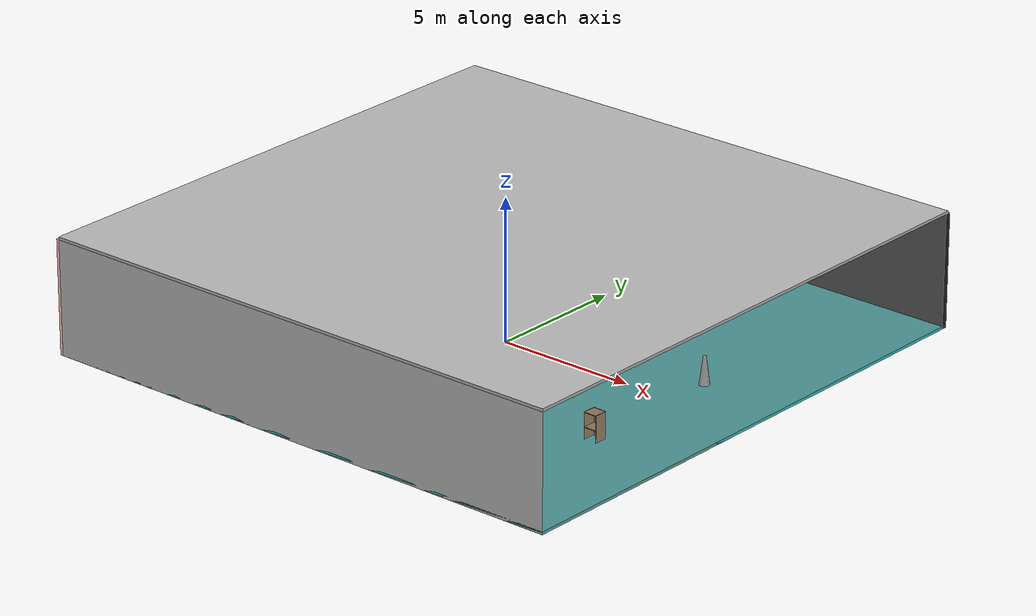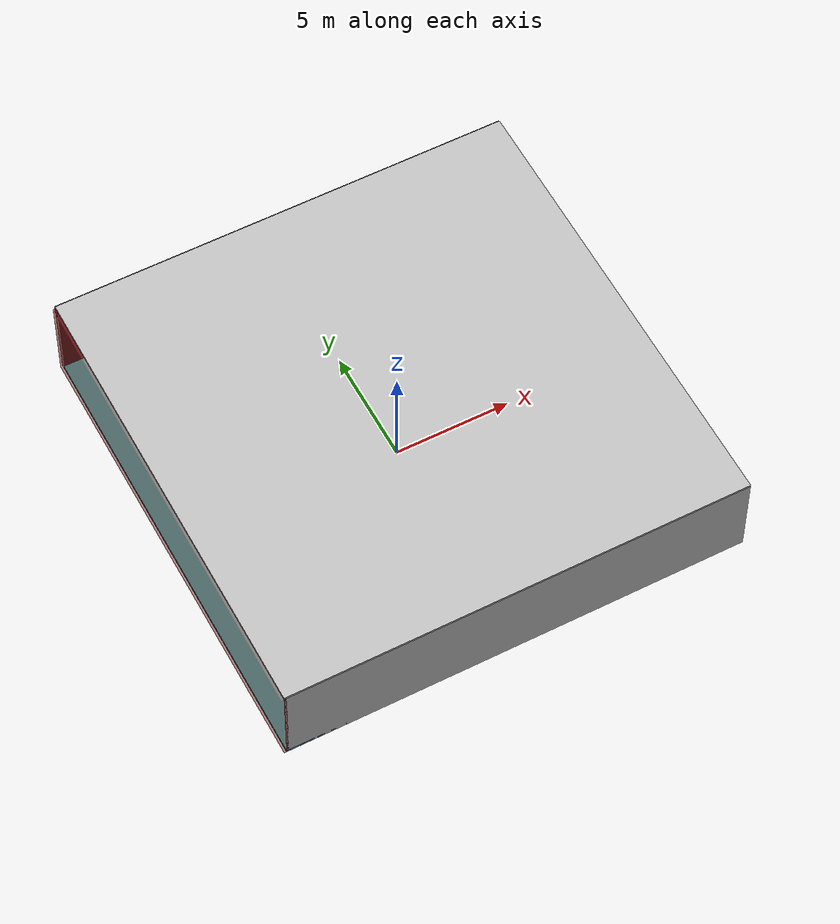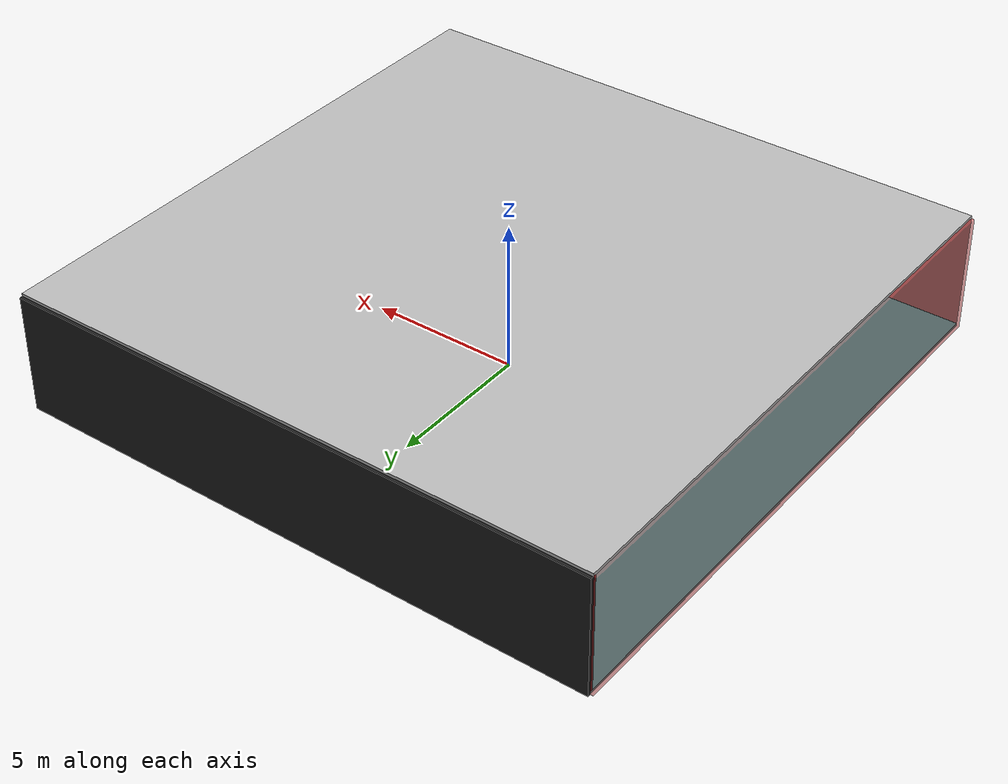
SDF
<sdf version="1.4">
 <world name="default">
  <physics type="ode">
   <max_step_size>0.001</max_step_size>
   <real_time_factor>1</real_time_factor>
   <real_time_update_rate>1000</real_time_update_rate>
   <gravity>0 0 -9.8</gravity>
  </physics>
  <scene><ambient>0.4 0.4 0.4 1</ambient><background>0.7 0.7 0.7 1</background><shadows>1</shadows></scene>
  <model name="Surrounding">
   <static>1</static>
   <link name="Ceiling">
    <collision name="Ceiling_Collision"><geometry><box><size>20 20 0.1</size></box></geometry></collision>
    <visual name="Ceiling_Visual">
     <geometry><box><size>20 20 0.1</size></box></geometry>
     <material>
      <script><uri>file://media/materials/scripts/gazebo.material</uri><name>Gazebo/LightOn</name></script>
     </material>
    </visual>
    <pose>0 0 4.05 0 0 0</pose>
   </link>
   <link name="Wall_South">
    <collision name="Wall_South_Collision">
     <geometry><box><size>20 0 4</size></box></geometry>
     <pose>0 0 2 0 -0 0</pose>
    </collision>
    <visual name="Wall_South_Visual">
     <pose>0 0 2 0 -0 0</pose>
     <geometry><box><size>20 0 4</size></box></geometry>
     <material>
      <script><uri>file://media/materials/scripts/gazebo.material</uri><name>Gazebo/Pioneer2Body</name></script>
     </material>
    </visual>
    <velocity_decay><linear>0</linear><angular>0</angular></velocity_decay>
    <pose>0 -10 0 0 -0 0</pose>
   </link>
   <link name="Wall_East">
    <collision name="Wall_21_Collision">
     <geometry><box><size>20 0 4</size></box></geometry>
     <pose>0 0 2 0 -0 0</pose>
    </collision>
    <visual name="Wall_21_Visual">
     <pose>0 0 2 0 -0 0</pose>
     <geometry><box><size>20 0 4</size></box></geometry>
     <material>
      <script><uri>file://media/materials/scripts/gazebo.material</uri><name>Gazebo/GreyTransparent</name></script>
     </material>
    </visual>
    <velocity_decay><linear>0</linear><angular>0</angular></velocity_decay>
    <pose>10 0 0 0 -0 1.5708</pose>
   </link>
   <link name="Wall_North">
    <collision name="Wall_22_Collision">
     <geometry><box><size>20 0.2 4</size></box></geometry>
     <pose>0 0 2 0 -0 0</pose>
    </collision>
    <visual name="Wall_22_Visual">
     <pose>0 0 2 0 -0 0</pose>
     <geometry><box><size>20 0.2 4</size></box></geometry>
     <material>
      <script><uri>file://media/materials/scripts/gazebo.material</uri><name>Gazebo/FlatBlack</name></script>
     </material>
    </visual>
    <velocity_decay><linear>0</linear><angular>0</angular></velocity_decay>
    <pose>0 10 0 0 -0 0</pose>
   </link>
   <link name="Wall_West">
    <collision name="Wall_23_Collision">
     <geometry><box><size>20 0.2 4</size></box></geometry>
     <pose>0 0 2 0 -0 0</pose>
    </collision>
    <visual name="Wall_23_Visual">
     <pose>0 0 2 0 -0 0</pose>
     <geometry><box><size>20 0.2 4</size></box></geometry>
     <material>
      <script><uri>file://media/materials/scripts/gazebo.material</uri><name>Gazebo/RedTransparent</name></script>
     </material>
    </visual>
    <velocity_decay><linear>0</linear><angular>0</angular></velocity_decay>
    <pose>-10 0 0 0 0 -1.5708</pose>
   </link>
   <link name="Ground_link">
    <collision name="collision">
     <pose>0 0 .05 0 -0 0</pose>
     <geometry><box><size>20 20 0.1</size></box></geometry>
    </collision>
    <visual name="visual">
     <pose>0 0 .05 0 -0 0</pose>
     <geometry><box><size>20 20 0.1</size></box></geometry>
     <material>
      <script>
       <uri>file://media/materials/scripts/gazebo.material</uri>
       <name>Gazebo/TurquoiseGlowOutline</name>
      </script>
     </material>
    </visual>
   </link>
   <static>1</static>
  </model>
  <spherical_coordinates>
   <surface_model>EARTH_WGS84</surface_model>
   <latitude_deg>0</latitude_deg>
   <longitude_deg>0</longitude_deg>
   <elevation>0</elevation>
   <heading_deg>0</heading_deg>
  </spherical_coordinates>
  <light name="lightball_0" type="diffuse">
   <diffuse>0.8 0.8 0.8 1</diffuse>
   <specular>0.2 0.2 0.2 1</specular>
   <attenuation>
    <range>100</range>
    <constant>0.7</constant>
    <linear>0.01</linear>
    <quadratic>0.001</quadratic>
   </attenuation>
   <direction>-0.5 0.1 -0.9</direction>
   <pose>7.03580580655 -5.8082998961 1.52267526075 0 0 0</pose>
  </light>
  <light name="lightball_1" type="diffuse">
   <diffuse>0.8 0.8 0.8 1</diffuse>
   <specular>0.2 0.2 0.2 1</specular>
   <attenuation>
    <range>100</range>
    <constant>0.7</constant>
    <linear>0.01</linear>
    <quadratic>0.001</quadratic>
   </attenuation>
   <direction>-0.5 0.1 -0.9</direction>
   <pose>7.10763752932 -8.29259481484 1.12060167996 0 0 0</pose>
  </light>
  <light name="lightball_2" type="diffuse">
   <diffuse>0.8 0.8 0.8 1</diffuse>
   <specular>0.2 0.2 0.2 1</specular>
   <attenuation>
    <range>100</range>
    <constant>0.7</constant>
    <linear>0.01</linear>
    <quadratic>0.001</quadratic>
   </attenuation>
   <direction>-0.5 0.1 -0.9</direction>
   <pose>5.33729773496 7.99495704223 2.65278561585 0 0 0</pose>
  </light>
  <light name="lightball_3" type="diffuse">
   <diffuse>0.8 0.8 0.8 1</diffuse>
   <specular>0.2 0.2 0.2 1</specular>
   <attenuation>
    <range>100</range>
    <constant>0.7</constant>
    <linear>0.01</linear>
    <quadratic>0.001</quadratic>
   </attenuation>
   <direction>-0.5 0.1 -0.9</direction>
   <pose>-1.2046223188 -7.49782266887 2.66851370033 0 0 0</pose>
  </light>
  <light name="lightball_4" type="diffuse">
   <diffuse>0.8 0.8 0.8 1</diffuse>
   <specular>0.2 0.2 0.2 1</specular>
   <attenuation>
    <range>100</range>
    <constant>0.7</constant>
    <linear>0.01</linear>
    <quadratic>0.001</quadratic>
   </attenuation>
   <direction>-0.5 0.1 -0.9</direction>
   <pose>6.39294483042 5.3245548819 1.66264822242 0 0 0</pose>
  </light>
  <light name="lightball_5" type="diffuse">
   <diffuse>0.8 0.8 0.8 1</diffuse>
   <specular>0.2 0.2 0.2 1</specular>
   <attenuation>
    <range>100</range>
    <constant>0.7</constant>
    <linear>0.01</linear>
    <quadratic>0.001</quadratic>
   </attenuation>
   <direction>-0.5 0.1 -0.9</direction>
   <pose>-2.38025771537 -7.21319275905 0.688862753903 0 0 0</pose>
  </light>
  <light name="lightball_6" type="diffuse">
   <diffuse>0.8 0.8 0.8 1</diffuse>
   <specular>0.2 0.2 0.2 1</specular>
   <attenuation>
    <range>100</range>
    <constant>0.7</constant>
    <linear>0.01</linear>
    <quadratic>0.001</quadratic>
   </attenuation>
   <direction>-0.5 0.1 -0.9</direction>
   <pose>-8.19342624884 8.17056055848 0.619154520393 0 0 0</pose>
  </light>
  <include><uri>model://cabinet</uri><pose>0.956480589338 -1.28264867963 0 0 0 2.31890631945</pose></include>
  <include>
   <uri>model://construction_cone</uri>
   <pose>1.97568186439 3.6063018506 0 0 0 1.19330521331</pose>
  </include>
  <include><uri>model://cabinet</uri><pose>7.00042579988 -3.98012419717 0 0 0 1.53846082521</pose></include>
  <include>
   <uri>model://construction_cone</uri>
   <pose>7.01236163401 1.38666861353 0 0 0 0.647932160001</pose>
  </include>
 </world>
</sdf>

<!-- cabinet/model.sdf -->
<sdf version="1.5">
  <model name="cabinet">
    <static>true</static>
    <link name="cabinet_bottom_plate">
      <inertial>
        <pose>0 0 -1 0 0 0</pose>
        <inertia>
          <ixx>2.050000</ixx>
          <ixy>0</ixy>
          <ixz>0</ixz>
          <iyy>2.050000</iyy>
          <iyz>0</iyz>
          <izz>2.050000</izz>
        </inertia>
        <mass>25.000000</mass>
      </inertial>
      <collision name="cabinet_bottom_plate_geom">
        <pose>0 0 0.010000 0 0 0</pose>
        <geometry>
          <box>
            <size>0.450000 0.450000 0.020000</size>
          </box>
        </geometry>
      </collision>
      <visual name="cabinet_bottom_plate_geom_visual">
        <pose>0 0 0.010000 0 0 0</pose>
        <geometry>
          <box>
            <size>0.450000 0.450000 0.020000</size>
          </box>
        </geometry>
        <material>
          <script>
            <uri>model://media/materials/scripts/gazebo.material</uri>
            <name>Gazebo/Wood</name>
          </script>
        </material>
      </visual>
      <collision name="cabinet_bottom_plate_geom_cabinet_back_plate">
        <pose>0.235000 0 0.510000 0 0 0</pose>
        <geometry>
          <box>
            <size>0.020000 0.450000 1.020000</size>
          </box>
        </geometry>
      </collision>
      <visual name="cabinet_bottom_plate_geom_cabinet_back_plate_visual">
        <pose>0.235000 0 0.510000 0 0 0</pose>
        <geometry>
          <box>
            <size>0.020000 0.450000 1.020000</size>
          </box>
        </geometry>
        <material>
          <script>
            <uri>model://media/materials/scripts/gazebo.material</uri>
            <name>Gazebo/Wood</name>
          </script>
        </material>
      </visual>
      <collision name="cabinet_bottom_plate_geom_cabinet_left_plate">
        <pose>0 0.235000 0.510000 0 0 0</pose>
        <geometry>
          <box>
            <size>0.450000 0.020000 1.020000</size>
          </box>
        </geometry>
      </collision>
      <visual name="cabinet_bottom_plate_geom_cabinet_left_plate_visual">
        <pose>0 0.235000 0.510000 0 0 0</pose>
        <geometry>
          <box>
            <size>0.450000 0.020000 1.020000</size>
          </box>
        </geometry>
        <material>
          <script>
            <uri>model://media/materials/scripts/gazebo.material</uri>
            <name>Gazebo/Wood</name>
          </script>
        </material>
      </visual>
      <collision name="cabinet_bottom_plate_geom_cabinet_middle_plate">
        <pose>0 0 0.510000 0 0 0</pose>
        <geometry>
          <box>
            <size>0.450000 0.450000 0.020000</size>
          </box>
        </geometry>
      </collision>
      <visual name="cabinet_bottom_plate_geom_cabinet_middle_plate_visual">
        <pose>0 0 0.510000 0 0 0</pose>
        <geometry>
          <box>
            <size>0.450000 0.450000 0.020000</size>
          </box>
        </geometry>
        <material>
          <script>
            <uri>model://media/materials/scripts/gazebo.material</uri>
            <name>Gazebo/Wood</name>
          </script>
        </material>
      </visual>
      <collision name="cabinet_bottom_plate_geom_cabinet_right_plate">
        <pose>0 -0.235000 0.510000 0 0 0</pose>
        <geometry>
          <box>
            <size>0.450000 0.020000 1.020000</size>
          </box>
        </geometry>
      </collision>
      <visual name="cabinet_bottom_plate_geom_cabinet_right_plate_visual">
        <pose>0 -0.235000 0.510000 0 0 0</pose>
        <geometry>
          <box>
            <size>0.450000 0.020000 1.020000</size>
          </box>
        </geometry>
        <material>
          <script>
            <uri>model://media/materials/scripts/gazebo.material</uri>
            <name>Gazebo/Wood</name>
          </script>
        </material>
      </visual>
      <collision name="cabinet_bottom_plate_geom_cabinet_top_plate">
        <pose>0 0 1.010000 0 0 0</pose>
        <geometry>
          <box>
            <size>0.450000 0.450000 0.020000</size>
          </box>
        </geometry>
      </collision>
      <visual name="cabinet_bottom_plate_geom_cabinet_top_plate_visual">
        <pose>0 0 1.010000 0 0 0</pose>
        <geometry>
          <box>
            <size>0.450000 0.450000 0.020000</size>
          </box>
        </geometry>
        <material>
          <script>
            <uri>model://media/materials/scripts/gazebo.material</uri>
            <name>Gazebo/Wood</name>
          </script>
        </material>
      </visual>
    </link>
  </model>
</sdf>

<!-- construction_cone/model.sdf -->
<sdf version="1.5">
  <model name="Construction Cone">
    <link name="link">
      <collision name="collision">
        <geometry>
          <mesh>
            <scale>10 10 10</scale>
            <uri>file://isr-testbed/construction_cone/meshes/construction_cone.dae</uri>
          </mesh>
        </geometry>
      </collision>
      <visual name="visual">
        <geometry>
          <mesh>
            <scale>10 10 10</scale>
            <uri>file://isr-testbed/construction_cone/meshes/construction_cone.dae</uri>
          </mesh>
        </geometry>
      </visual>
    </link>
  </model>
</sdf>
